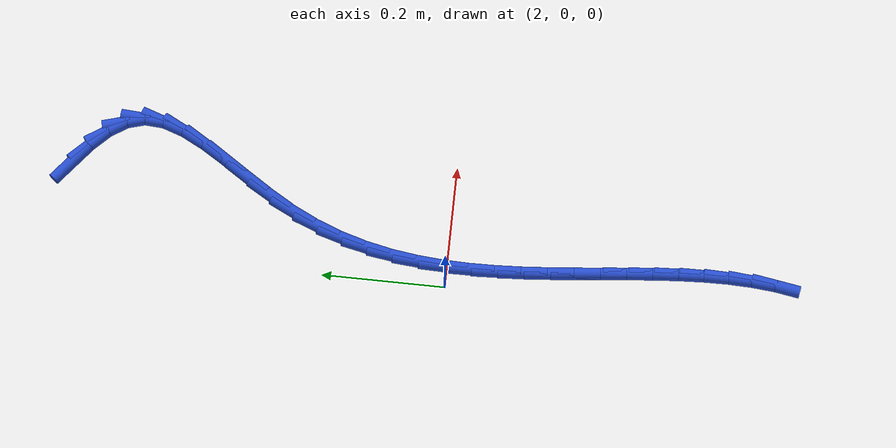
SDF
<sdf version="1.6">
 <world name="default">
  <model name="ground_plane">
   <static>1</static>
   <link name="link">
    <collision name="collision">
     <geometry><plane><normal>0 0 1</normal><size>100 100</size></plane></geometry>
     <surface><friction><ode><mu>100</mu><mu2>50</mu2></ode></friction></surface>
    </collision>
    <visual name="visual">
     <cast_shadows>0</cast_shadows>
     <geometry><plane><normal>0 0 1</normal><size>100 100</size></plane></geometry>
     <material>
      <script><uri>file://media/materials/scripts/gazebo.material</uri><name>Gazebo/WhiteGlow</name></script>
     </material>
    </visual>
   </link>
  </model>
  <model name="line">
   <link name="link_75">
    <pose>2.1424405594045717 0.6246826782122876 0.01 0 1.57 -0.6768395364388546</pose>
    <collision name="collision">
     <geometry><cylinder><radius>0.01</radius><length>0.08</length></cylinder></geometry>
    </collision>
    <visual name="visual">
     <material>
      <script><name>Gazebo/Blue</name><uri>file://media/materials/scripts/gazebo.material</uri></script>
     </material>
     <geometry><cylinder><radius>0.01</radius><length>0.08</length></cylinder></geometry>
    </visual>
   </link>
   <link name="link_76">
    <pose>2.174739941551704 0.598731820779149 0.01 0 1.57 -0.7932141563100834</pose>
    <collision name="collision">
     <geometry><cylinder><radius>0.01</radius><length>0.08</length></cylinder></geometry>
    </collision>
    <visual name="visual">
     <material>
      <script><name>Gazebo/Blue</name><uri>file://media/materials/scripts/gazebo.material</uri></script>
     </material>
     <geometry><cylinder><radius>0.01</radius><length>0.08</length></cylinder></geometry>
    </visual>
   </link>
   <link name="link_77">
    <pose>2.200990459721913 0.5720677138521606 0.01 0 1.57 -0.9892952009019944</pose>
    <collision name="collision">
     <geometry><cylinder><radius>0.01</radius><length>0.08</length></cylinder></geometry>
    </collision>
    <visual name="visual">
     <material>
      <script><name>Gazebo/Blue</name><uri>file://media/materials/scripts/gazebo.material</uri></script>
     </material>
     <geometry><cylinder><radius>0.01</radius><length>0.08</length></cylinder></geometry>
    </visual>
   </link>
   <link name="link_78">
    <pose>2.219336033049949 0.5441578923885603 0.01 0 1.57 -1.2893106495585078</pose>
    <collision name="collision">
     <geometry><cylinder><radius>0.01</radius><length>0.08</length></cylinder></geometry>
    </collision>
    <visual name="visual">
     <material>
      <script><name>Gazebo/Blue</name><uri>file://media/materials/scripts/gazebo.material</uri></script>
     </material>
     <geometry><cylinder><radius>0.01</radius><length>0.08</length></cylinder></geometry>
    </visual>
   </link>
   <link name="link_79">
    <pose>2.227920713222248 0.5144699164596981 0.01 0 1.57 1.5010214749426007</pose>
    <collision name="collision">
     <geometry><cylinder><radius>0.01</radius><length>0.08</length></cylinder></geometry>
    </collision>
    <visual name="visual">
     <material>
      <script><name>Gazebo/Blue</name><uri>file://media/materials/scripts/gazebo.material</uri></script>
     </material>
     <geometry><cylinder><radius>0.01</radius><length>0.08</length></cylinder></geometry>
    </visual>
   </link>
   <link name="link_80">
    <pose>2.225695066798362 0.4826241537439356 0.01 0 1.57 1.2468501743278924</pose>
    <collision name="collision">
     <geometry><cylinder><radius>0.01</radius><length>0.08</length></cylinder></geometry>
    </collision>
    <visual name="visual">
     <material>
      <script><name>Gazebo/Blue</name><uri>file://media/materials/scripts/gazebo.material</uri></script>
     </material>
     <geometry><cylinder><radius>0.01</radius><length>0.08</length></cylinder></geometry>
    </visual>
   </link>
   <link name="link_81">
    <pose>2.2143226608900153 0.4487549948298349 0.01 0 1.57 1.0968650707980216</pose>
    <collision name="collision">
     <geometry><cylinder><radius>0.01</radius><length>0.08</length></cylinder></geometry>
    </collision>
    <visual name="visual">
     <material>
      <script><name>Gazebo/Blue</name><uri>file://media/materials/scripts/gazebo.material</uri></script>
     </material>
     <geometry><cylinder><radius>0.01</radius><length>0.08</length></cylinder></geometry>
    </visual>
   </link>
   <link name="link_82">
    <pose>2.196036909727122 0.4131047972851108 0.01 0 1.57 1.0175782917872758</pose>
    <collision name="collision">
     <geometry><cylinder><radius>0.01</radius><length>0.08</length></cylinder></geometry>
    </collision>
    <visual name="visual">
     <material>
      <script><name>Gazebo/Blue</name><uri>file://media/materials/scripts/gazebo.material</uri></script>
     </material>
     <geometry><cylinder><radius>0.01</radius><length>0.08</length></cylinder></geometry>
    </visual>
   </link>
   <link name="link_83">
    <pose>2.173071227539594 0.3759159186774781 0.01 0 1.57 0.9872067763890501</pose>
    <collision name="collision">
     <geometry><cylinder><radius>0.01</radius><length>0.08</length></cylinder></geometry>
    </collision>
    <visual name="visual">
     <material>
      <script><name>Gazebo/Blue</name><uri>file://media/materials/scripts/gazebo.material</uri></script>
     </material>
     <geometry><cylinder><radius>0.01</radius><length>0.08</length></cylinder></geometry>
    </visual>
   </link>
   <link name="link_84">
    <pose>2.147659028557347 0.33743071657465284 0.01 0 1.57 0.9957585349180698</pose>
    <collision name="collision">
     <geometry><cylinder><radius>0.01</radius><length>0.08</length></cylinder></geometry>
    </collision>
    <visual name="visual">
     <material>
      <script><name>Gazebo/Blue</name><uri>file://media/materials/scripts/gazebo.material</uri></script>
     </material>
     <geometry><cylinder><radius>0.01</radius><length>0.08</length></cylinder></geometry>
    </visual>
   </link>
   <link name="link_85">
    <pose>2.1220337270102942 0.2978915485443493 0.01 0 1.57 1.0414832140080643</pose>
    <collision name="collision">
     <geometry><cylinder><radius>0.01</radius><length>0.08</length></cylinder></geometry>
    </collision>
    <visual name="visual">
     <material>
      <script><name>Gazebo/Blue</name><uri>file://media/materials/scripts/gazebo.material</uri></script>
     </material>
     <geometry><cylinder><radius>0.01</radius><length>0.08</length></cylinder></geometry>
    </visual>
   </link>
   <link name="link_86">
    <pose>2.09842873712835 0.25754077215428367 0.01 0 1.57 1.1219140910498924</pose>
    <collision name="collision">
     <geometry><cylinder><radius>0.01</radius><length>0.08</length></cylinder></geometry>
    </collision>
    <visual name="visual">
     <material>
      <script><name>Gazebo/Blue</name><uri>file://media/materials/scripts/gazebo.material</uri></script>
     </material>
     <geometry><cylinder><radius>0.01</radius><length>0.08</length></cylinder></geometry>
    </visual>
   </link>
   <link name="link_87">
    <pose>2.078707059050602 0.21659700913449362 0.01 0 1.57 1.208509203918068</pose>
    <collision name="collision">
     <geometry><cylinder><radius>0.01</radius><length>0.08</length></cylinder></geometry>
    </collision>
    <visual name="visual">
     <material>
      <script><name>Gazebo/Blue</name><uri>file://media/materials/scripts/gazebo.material</uri></script>
     </material>
     <geometry><cylinder><radius>0.01</radius><length>0.08</length></cylinder></geometry>
    </visual>
   </link>
   <link name="link_88">
    <pose>2.063004877196523 0.17516822824949976 0.01 0 1.57 1.290385824954423</pose>
    <collision name="collision">
     <geometry><cylinder><radius>0.01</radius><length>0.08</length></cylinder></geometry>
    </collision>
    <visual name="visual">
     <material>
      <script><name>Gazebo/Blue</name><uri>file://media/materials/scripts/gazebo.material</uri></script>
     </material>
     <geometry><cylinder><radius>0.01</radius><length>0.08</length></cylinder></geometry>
    </visual>
   </link>
   <link name="link_89">
    <pose>2.0509555681632117 0.1333301787420774 0.01 0 1.57 1.365915227064944</pose>
    <collision name="collision">
     <geometry><cylinder><radius>0.01</radius><length>0.08</length></cylinder></geometry>
    </collision>
    <visual name="visual">
     <material>
      <script><name>Gazebo/Blue</name><uri>file://media/materials/scripts/gazebo.material</uri></script>
     </material>
     <geometry><cylinder><radius>0.01</radius><length>0.08</length></cylinder></geometry>
    </visual>
   </link>
   <link name="link_90">
    <pose>2.0421924511888343 0.09115860617948608 0.01 0 1.57 1.4339318037851707</pose>
    <collision name="collision">
     <geometry><cylinder><radius>0.01</radius><length>0.08</length></cylinder></geometry>
    </collision>
    <visual name="visual">
     <material>
      <script><name>Gazebo/Blue</name><uri>file://media/materials/scripts/gazebo.material</uri></script>
     </material>
     <geometry><cylinder><radius>0.01</radius><length>0.08</length></cylinder></geometry>
    </visual>
   </link>
   <link name="link_91">
    <pose>2.036348845511559 0.048729256128986 0.01 0 1.57 1.493721701961457</pose>
    <collision name="collision">
     <geometry><cylinder><radius>0.01</radius><length>0.08</length></cylinder></geometry>
    </collision>
    <visual name="visual">
     <material>
      <script><name>Gazebo/Blue</name><uri>file://media/materials/scripts/gazebo.material</uri></script>
     </material>
     <geometry><cylinder><radius>0.01</radius><length>0.08</length></cylinder></geometry>
    </visual>
   </link>
   <link name="link_92">
    <pose>2.0330580703695507 0.00611787415783621 0.01 0 1.57 1.544943341393021</pose>
    <collision name="collision">
     <geometry><cylinder><radius>0.01</radius><length>0.08</length></cylinder></geometry>
    </collision>
    <visual name="visual">
     <material>
      <script><name>Gazebo/Blue</name><uri>file://media/materials/scripts/gazebo.material</uri></script>
     </material>
     <geometry><cylinder><radius>0.01</radius><length>0.08</length></cylinder></geometry>
    </visual>
   </link>
   <link name="link_93">
    <pose>2.031953445000978 -0.03659979416670133 0.01 0 1.57 -1.554075695963411</pose>
    <collision name="collision">
     <geometry><cylinder><radius>0.01</radius><length>0.08</length></cylinder></geometry>
    </collision>
    <visual name="visual">
     <material>
      <script><name>Gazebo/Blue</name><uri>file://media/materials/scripts/gazebo.material</uri></script>
     </material>
     <geometry><cylinder><radius>0.01</radius><length>0.08</length></cylinder></geometry>
    </visual>
   </link>
   <link name="link_94">
    <pose>2.032668288644008 -0.0793480032773675 0.01 0 1.57 -1.5200792153857972</pose>
    <collision name="collision">
     <geometry><cylinder><radius>0.01</radius><length>0.08</length></cylinder></geometry>
    </collision>
    <visual name="visual">
     <material>
      <script><name>Gazebo/Blue</name><uri>file://media/materials/scripts/gazebo.material</uri></script>
     </material>
     <geometry><cylinder><radius>0.01</radius><length>0.08</length></cylinder></geometry>
    </visual>
   </link>
   <link name="link_95">
    <pose>2.034835920536807 -0.12205100760690209 0.01 0 1.57 -1.4945334721663008</pose>
    <collision name="collision">
     <geometry><cylinder><radius>0.01</radius><length>0.08</length></cylinder></geometry>
    </collision>
    <visual name="visual">
     <material>
      <script><name>Gazebo/Blue</name><uri>file://media/materials/scripts/gazebo.material</uri></script>
     </material>
     <geometry><cylinder><radius>0.01</radius><length>0.08</length></cylinder></geometry>
    </visual>
   </link>
   <link name="link_96">
    <pose>2.0380896599175427 -0.16463306158804517 0.01 0 1.57 -1.4773303322376514</pose>
    <collision name="collision">
     <geometry><cylinder><radius>0.01</radius><length>0.08</length></cylinder></geometry>
    </collision>
    <visual name="visual">
     <material>
      <script><name>Gazebo/Blue</name><uri>file://media/materials/scripts/gazebo.material</uri></script>
     </material>
     <geometry><cylinder><radius>0.01</radius><length>0.08</length></cylinder></geometry>
    </visual>
   </link>
   <link name="link_97">
    <pose>2.0420628260243823 -0.20701841965353657 0.01 0 1.57 -1.4684336146602264</pose>
    <collision name="collision">
     <geometry><cylinder><radius>0.01</radius><length>0.08</length></cylinder></geometry>
    </collision>
    <visual name="visual">
     <material>
      <script><name>Gazebo/Blue</name><uri>file://media/materials/scripts/gazebo.material</uri></script>
     </material>
     <geometry><cylinder><radius>0.01</radius><length>0.08</length></cylinder></geometry>
    </visual>
   </link>
   <link name="link_98">
    <pose>2.0463887380954926 -0.24913133623611716 0.01 0 1.57 -1.4679163725665139</pose>
    <collision name="collision">
     <geometry><cylinder><radius>0.01</radius><length>0.08</length></cylinder></geometry>
    </collision>
    <visual name="visual">
     <material>
      <script><name>Gazebo/Blue</name><uri>file://media/materials/scripts/gazebo.material</uri></script>
     </material>
     <geometry><cylinder><radius>0.01</radius><length>0.08</length></cylinder></geometry>
    </visual>
   </link>
   <link name="link_99">
    <pose>2.050700715369041 -0.290896065768525 0.01 0 1.57 -1.4759850258172469</pose>
    <collision name="collision">
     <geometry><cylinder><radius>0.01</radius><length>0.08</length></cylinder></geometry>
    </collision>
    <visual name="visual">
     <material>
      <script><name>Gazebo/Blue</name><uri>file://media/materials/scripts/gazebo.material</uri></script>
     </material>
     <geometry><cylinder><radius>0.01</radius><length>0.08</length></cylinder></geometry>
    </visual>
   </link>
   <link name="link_100">
    <pose>2.054632077083194 -0.33223686268350106 0.01 0 1.57 -1.4929914605036245</pose>
    <collision name="collision">
     <geometry><cylinder><radius>0.01</radius><length>0.08</length></cylinder></geometry>
    </collision>
    <visual name="visual">
     <material>
      <script><name>Gazebo/Blue</name><uri>file://media/materials/scripts/gazebo.material</uri></script>
     </material>
     <geometry><cylinder><radius>0.01</radius><length>0.08</length></cylinder></geometry>
    </visual>
   </link>
   <link name="link_101">
    <pose>2.0578161424761183 -0.373077981413785 0.01 0 1.57 -1.519430830503437</pose>
    <collision name="collision">
     <geometry><cylinder><radius>0.01</radius><length>0.08</length></cylinder></geometry>
    </collision>
    <visual name="visual">
     <material>
      <script><name>Gazebo/Blue</name><uri>file://media/materials/scripts/gazebo.material</uri></script>
     </material>
     <geometry><cylinder><radius>0.01</radius><length>0.08</length></cylinder></geometry>
    </visual>
   </link>
   <link name="link_102">
    <pose>2.059886230785982 -0.413343676392117 0.01 0 1.57 -1.555918274789647</pose>
    <collision name="collision">
     <geometry><cylinder><radius>0.01</radius><length>0.08</length></cylinder></geometry>
    </collision>
    <visual name="visual">
     <material>
      <script><name>Gazebo/Blue</name><uri>file://media/materials/scripts/gazebo.material</uri></script>
     </material>
     <geometry><cylinder><radius>0.01</radius><length>0.08</length></cylinder></geometry>
    </visual>
   </link>
   <link name="link_103">
    <pose>2.0604756612509516 -0.4529582020512377 0.01 0 1.57 1.5384603293840144</pose>
    <collision name="collision">
     <geometry><cylinder><radius>0.01</radius><length>0.08</length></cylinder></geometry>
    </collision>
    <visual name="visual">
     <material>
      <script><name>Gazebo/Blue</name><uri>file://media/materials/scripts/gazebo.material</uri></script>
     </material>
     <geometry><cylinder><radius>0.01</radius><length>0.08</length></cylinder></geometry>
    </visual>
   </link>
   <link name="link_104">
    <pose>2.059217753109195 -0.49184581282388523 0.01 0 1.57 1.4798848991413958</pose>
    <collision name="collision">
     <geometry><cylinder><radius>0.01</radius><length>0.08</length></cylinder></geometry>
    </collision>
    <visual name="visual">
     <material>
      <script><name>Gazebo/Blue</name><uri>file://media/materials/scripts/gazebo.material</uri></script>
     </material>
     <geometry><cylinder><radius>0.01</radius><length>0.08</length></cylinder></geometry>
    </visual>
   </link>
   <link name="link_105">
    <pose>2.055745825598878 -0.5299307631428005 0.01 0 1.57 1.4095325402022756</pose>
    <collision name="collision">
     <geometry><cylinder><radius>0.01</radius><length>0.08</length></cylinder></geometry>
    </collision>
    <visual name="visual">
     <material>
      <script><name>Gazebo/Blue</name><uri>file://media/materials/scripts/gazebo.material</uri></script>
     </material>
     <geometry><cylinder><radius>0.01</radius><length>0.08</length></cylinder></geometry>
    </visual>
   </link>
  </model>
 </world>
</sdf>
